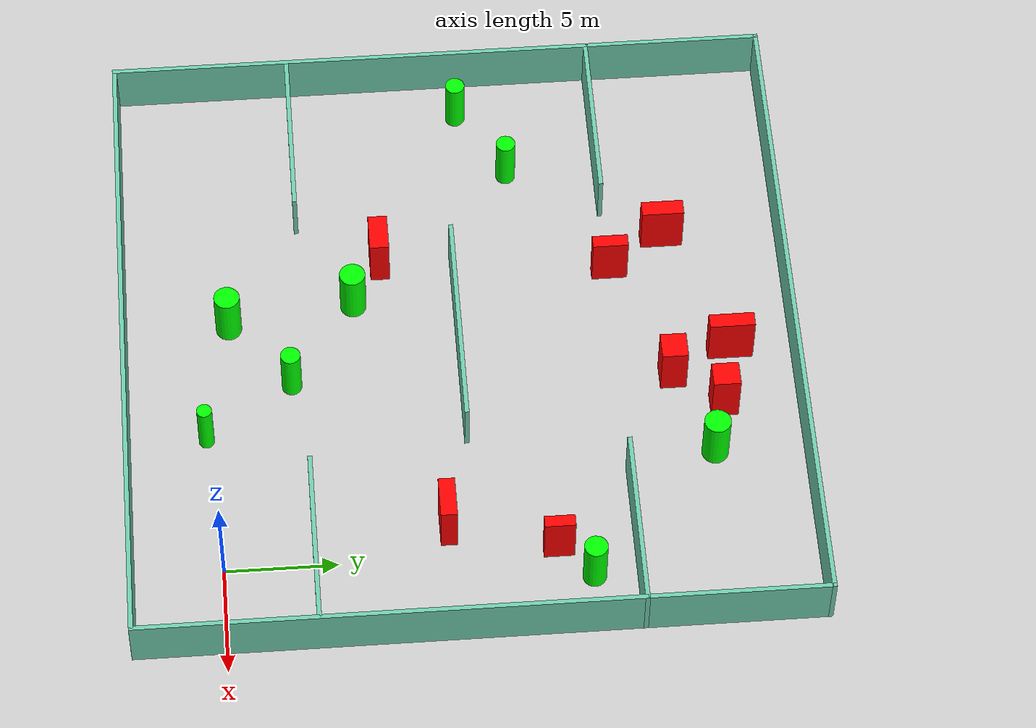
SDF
<sdf version="1.7">
 <world name="default">
  <light name="sun" type="directional">
   <pose>0 0 10 0 -0 0</pose>
   <diffuse>0.8 0.8 0.8 1</diffuse>
   <specular>0.2 0.2 0.2 1</specular>
   <attenuation>
    <range>1000</range>
    <constant>0.9</constant>
    <linear>0.01</linear>
    <quadratic>0.001</quadratic>
   </attenuation>
   <direction>-0.5 0.1 -0.9</direction>
   <spot><inner_angle>0</inner_angle><outer_angle>0</outer_angle><falloff>0</falloff></spot>
  </light>
  <model name="ground_plane">
   <static>1</static>
   <link name="link">
    <collision name="collision">
     <geometry><plane><normal>0 0 1</normal><size>100 100</size></plane></geometry>
     <surface>
      <contact><collide_bitmask>65535</collide_bitmask></contact>
      <friction><ode><mu>100</mu><mu2>50</mu2></ode></friction>
     </surface>
    </collision>
    <visual name="visual">
     <cast_shadows>0</cast_shadows>
     <geometry><plane><normal>0 0 1</normal><size>100 100</size></plane></geometry>
     <material>
      <script><uri>file://media/materials/scripts/gazebo.material</uri><name>Gazebo/Grey</name></script>
     </material>
    </visual>
   </link>
  </model>
  <gravity>0 0 -9.8</gravity>
  <magnetic_field>6e-06 2.3e-05 -4.2e-05</magnetic_field>
  <atmosphere type="adiabatic"/>
  <physics type="ode">
   <max_step_size>0.001</max_step_size>
   <real_time_factor>1</real_time_factor>
   <real_time_update_rate>1000</real_time_update_rate>
  </physics>
  <scene><ambient>0.4 0.4 0.4 1</ambient><background>0.7 0.7 0.7 1</background><shadows>1</shadows></scene>
  <spherical_coordinates>
   <surface_model>EARTH_WGS84</surface_model>
   <latitude_deg>0</latitude_deg>
   <longitude_deg>0</longitude_deg>
   <elevation>0</elevation>
   <heading_deg>0</heading_deg>
  </spherical_coordinates>
  <model name="my_base_walls">
   <link name="Wall_10">
    <collision name="Wall_10_Collision">
     <geometry><box><size>8.2 0.2 2.5</size></box></geometry>
     <pose>0 0 1.25 0 -0 0</pose>
    </collision>
    <visual name="Wall_10_Visual">
     <pose>0 0 1.25 0 -0 0</pose>
     <geometry><box><size>8.2 0.2 2.5</size></box></geometry>
     <material>
      <script><uri>file://media/materials/scripts/gazebo.material</uri><name>Gazebo/Grey</name></script>
      <ambient>0.435294 0.796078 0.67451 1</ambient>
     </material>
     <meta><layer>0</layer></meta>
    </visual>
    <pose>-11 -7 0 0 -0 0</pose>
   </link>
   <link name="Wall_12">
    <collision name="Wall_12_Collision">
     <geometry><box><size>8.2 0.2 2.5</size></box></geometry>
     <pose>0 0 1.25 0 -0 0</pose>
    </collision>
    <visual name="Wall_12_Visual">
     <pose>0 0 1.25 0 -0 0</pose>
     <geometry><box><size>8.2 0.2 2.5</size></box></geometry>
     <material>
      <script><uri>file://media/materials/scripts/gazebo.material</uri><name>Gazebo/Grey</name></script>
      <ambient>0.435294 0.796078 0.67451 1</ambient>
     </material>
     <meta><layer>0</layer></meta>
    </visual>
    <pose>-11 7 0 0 -0 0</pose>
   </link>
   <link name="Wall_14">
    <collision name="Wall_14_Collision">
     <geometry><box><size>8.2 0.2 2.5</size></box></geometry>
     <pose>0 0 1.25 0 -0 0</pose>
    </collision>
    <visual name="Wall_14_Visual">
     <pose>0 0 1.25 0 -0 0</pose>
     <geometry><box><size>8.2 0.2 2.5</size></box></geometry>
     <material>
      <script><uri>file://media/materials/scripts/gazebo.material</uri><name>Gazebo/Grey</name></script>
      <ambient>0.435294 0.796078 0.67451 1</ambient>
     </material>
     <meta><layer>0</layer></meta>
    </visual>
    <pose>11 7 0 0 -0 3.14159</pose>
   </link>
   <link name="Wall_16">
    <collision name="Wall_16_Collision">
     <geometry><box><size>10.2 0.2 2.5</size></box></geometry>
     <pose>0 0 1.25 0 -0 0</pose>
    </collision>
    <visual name="Wall_16_Visual">
     <pose>0 0 1.25 0 -0 0</pose>
     <geometry><box><size>10.2 0.2 2.5</size></box></geometry>
     <material>
      <script><uri>file://media/materials/scripts/gazebo.material</uri><name>Gazebo/Grey</name></script>
      <ambient>0.435294 0.796078 0.67451 1</ambient>
     </material>
     <meta><layer>0</layer></meta>
    </visual>
    <pose>0 0 0 0 -0 3.14159</pose>
   </link>
   <link name="Wall_2">
    <collision name="Wall_2_Collision">
     <geometry><box><size>30.2 0.2 2.5</size></box></geometry>
     <pose>0 0 1.25 0 -0 0</pose>
    </collision>
    <visual name="Wall_2_Visual">
     <pose>0 0 1.25 0 -0 0</pose>
     <geometry><box><size>30.2 0.2 2.5</size></box></geometry>
     <material>
      <script><uri>file://media/materials/scripts/gazebo.material</uri><name>Gazebo/Grey</name></script>
      <ambient>0.435294 0.796078 0.67451 1</ambient>
     </material>
     <meta><layer>0</layer></meta>
    </visual>
    <pose>0 -15 0 0 -0 3.14159</pose>
   </link>
   <link name="Wall_3">
    <collision name="Wall_3_Collision">
     <geometry><box><size>30.2 0.2 2.5</size></box></geometry>
     <pose>0 0 1.25 0 -0 0</pose>
    </collision>
    <visual name="Wall_3_Visual">
     <pose>0 0 1.25 0 -0 0</pose>
     <geometry><box><size>30.2 0.2 2.5</size></box></geometry>
     <material>
      <script><uri>file://media/materials/scripts/gazebo.material</uri><name>Gazebo/Grey</name></script>
      <ambient>0.435294 0.796078 0.67451 1</ambient>
     </material>
     <meta><layer>0</layer></meta>
    </visual>
    <pose>-15 0 0 0 -0 1.5708</pose>
   </link>
   <link name="Wall_4">
    <collision name="Wall_4_Collision">
     <geometry><box><size>30.2 0.2 2.5</size></box></geometry>
     <pose>0 0 1.25 0 -0 0</pose>
    </collision>
    <visual name="Wall_4_Visual">
     <pose>0 0 1.25 0 -0 0</pose>
     <geometry><box><size>30.2 0.2 2.5</size></box></geometry>
     <material>
      <script><uri>file://media/materials/scripts/gazebo.material</uri><name>Gazebo/Grey</name></script>
      <ambient>0.435294 0.796078 0.67451 1</ambient>
     </material>
     <meta><layer>0</layer></meta>
    </visual>
    <pose>0 15 0 0 -0 0</pose>
   </link>
   <link name="Wall_6">
    <collision name="Wall_6_Collision">
     <geometry><box><size>30.2 0.2 2.5</size></box></geometry>
     <pose>0 0 1.25 0 -0 0</pose>
    </collision>
    <visual name="Wall_6_Visual">
     <pose>0 0 1.25 0 -0 0</pose>
     <geometry><box><size>30.2 0.2 2.5</size></box></geometry>
     <material>
      <script><uri>file://media/materials/scripts/gazebo.material</uri><name>Gazebo/Grey</name></script>
      <ambient>0.435294 0.796078 0.67451 1</ambient>
     </material>
     <meta><layer>0</layer></meta>
    </visual>
    <pose>15 0 0 0 -0 1.5708</pose>
   </link>
   <link name="Wall_8">
    <collision name="Wall_8_Collision">
     <geometry><box><size>8.2 0.2 2.5</size></box></geometry>
     <pose>0 0 1.25 0 -0 0</pose>
    </collision>
    <visual name="Wall_8_Visual">
     <pose>0 0 1.25 0 -0 0</pose>
     <geometry><box><size>8.2 0.2 2.5</size></box></geometry>
     <material>
      <script><uri>file://media/materials/scripts/gazebo.material</uri><name>Gazebo/Grey</name></script>
      <ambient>0.435294 0.796078 0.67451 1</ambient>
     </material>
     <meta><layer>0</layer></meta>
    </visual>
    <pose>11 -7 0 0 -0 3.14159</pose>
   </link>
   <static>1</static>
   <pose>-11 11 0 0 -0 0</pose>
  </model>
  <model name="cylinder1">
   <static>1</static>
   <link name="link">
    <inertial>
     <mass>1</mass>
     <inertia><ixx>0.5</ixx><ixy>0</ixy><ixz>0</ixz><iyy>0.5</iyy><iyz>0</iyz><izz>1</izz></inertia>
    </inertial>
    <collision name="collision">
     <geometry><cylinder><radius>0.5832993530440098</radius><length>2.5</length></cylinder></geometry>
    </collision>
    <visual name="visual">
     <geometry><cylinder><radius>0.5832993530440098</radius><length>2.5</length></cylinder></geometry>
     <material>
      <ambient>0 1 0 1</ambient>
      <diffuse>0 1 0 1</diffuse>
      <specular>0.1 0.1 0.1 1</specular>
      <emissive>0 0 0 0</emissive>
     </material>
    </visual>
   </link>
   <pose>-13.64223162528172 6.391942692424802 1.25 0 0 0</pose>
  </model>
  <model name="cylinder2">
   <static>1</static>
   <link name="link">
    <inertial>
     <mass>1</mass>
     <inertia><ixx>0.5</ixx><ixy>0</ixy><ixz>0</ixz><iyy>0.5</iyy><iyz>0</iyz><izz>1</izz></inertia>
    </inertial>
    <collision name="collision">
     <geometry><cylinder><radius>0.44322518851225035</radius><length>2.5</length></cylinder></geometry>
    </collision>
    <visual name="visual">
     <geometry><cylinder><radius>0.44322518851225035</radius><length>2.5</length></cylinder></geometry>
     <material>
      <ambient>0 1 0 1</ambient>
      <diffuse>0 1 0 1</diffuse>
      <specular>0.1 0.1 0.1 1</specular>
      <emissive>0 0 0 0</emissive>
     </material>
    </visual>
   </link>
   <pose>-9.457978294094339 3.409522423859185 1.25 0 0 0</pose>
  </model>
  <model name="cylinder3">
   <static>1</static>
   <link name="link">
    <inertial>
     <mass>1</mass>
     <inertia><ixx>0.5</ixx><ixy>0</ixy><ixz>0</ixz><iyy>0.5</iyy><iyz>0</iyz><izz>1</izz></inertia>
    </inertial>
    <collision name="collision">
     <geometry><cylinder><radius>0.5937829469590065</radius><length>2.5</length></cylinder></geometry>
    </collision>
    <visual name="visual">
     <geometry><cylinder><radius>0.5937829469590065</radius><length>2.5</length></cylinder></geometry>
     <material>
      <ambient>0 1 0 1</ambient>
      <diffuse>0 1 0 1</diffuse>
      <specular>0.1 0.1 0.1 1</specular>
      <emissive>0 0 0 0</emissive>
     </material>
    </visual>
   </link>
   <pose>-4.6429762061211015 21.935531089043597 1.25 0 0 0</pose>
  </model>
  <model name="cylinder4">
   <static>1</static>
   <link name="link">
    <inertial>
     <mass>1</mass>
     <inertia><ixx>0.5</ixx><ixy>0</ixy><ixz>0</ixz><iyy>0.5</iyy><iyz>0</iyz><izz>1</izz></inertia>
    </inertial>
    <collision name="collision">
     <geometry><cylinder><radius>0.33897741379423285</radius><length>2.5</length></cylinder></geometry>
    </collision>
    <visual name="visual">
     <geometry><cylinder><radius>0.33897741379423285</radius><length>2.5</length></cylinder></geometry>
     <material>
      <ambient>0 1 0 1</ambient>
      <diffuse>0 1 0 1</diffuse>
      <specular>0.1 0.1 0.1 1</specular>
      <emissive>0 0 0 0</emissive>
     </material>
    </visual>
   </link>
   <pose>-6.791925823052653 -0.5025584546632609 1.25 0 0 0</pose>
  </model>
  <model name="cylinder5">
   <static>1</static>
   <link name="link">
    <inertial>
     <mass>1</mass>
     <inertia><ixx>0.5</ixx><ixy>0</ixy><ixz>0</ixz><iyy>0.5</iyy><iyz>0</iyz><izz>1</izz></inertia>
    </inertial>
    <collision name="collision">
     <geometry><cylinder><radius>0.44017729996959415</radius><length>2.5</length></cylinder></geometry>
    </collision>
    <visual name="visual">
     <geometry><cylinder><radius>0.44017729996959415</radius><length>2.5</length></cylinder></geometry>
     <material>
      <ambient>0 1 0 1</ambient>
      <diffuse>0 1 0 1</diffuse>
      <specular>0.1 0.1 0.1 1</specular>
      <emissive>0 0 0 0</emissive>
     </material>
    </visual>
   </link>
   <pose>-20.507837062126484 13.842553483893202 1.25 0 0 0</pose>
  </model>
  <model name="cylinder6">
   <static>1</static>
   <link name="link">
    <inertial>
     <mass>1</mass>
     <inertia><ixx>0.5</ixx><ixy>0</ixy><ixz>0</ixz><iyy>0.5</iyy><iyz>0</iyz><izz>1</izz></inertia>
    </inertial>
    <collision name="collision">
     <geometry><cylinder><radius>0.5188653970114998</radius><length>2.5</length></cylinder></geometry>
    </collision>
    <visual name="visual">
     <geometry><cylinder><radius>0.5188653970114998</radius><length>2.5</length></cylinder></geometry>
     <material>
      <ambient>0 1 0 1</ambient>
      <diffuse>0 1 0 1</diffuse>
      <specular>0.1 0.1 0.1 1</specular>
      <emissive>0 0 0 0</emissive>
     </material>
    </visual>
   </link>
   <pose>1.3643259295379657 16.03687147231446 1.25 0 0 0</pose>
  </model>
  <model name="cylinder7">
   <static>1</static>
   <link name="link">
    <inertial>
     <mass>1</mass>
     <inertia><ixx>0.5</ixx><ixy>0</ixy><ixz>0</ixz><iyy>0.5</iyy><iyz>0</iyz><izz>1</izz></inertia>
    </inertial>
    <collision name="collision">
     <geometry><cylinder><radius>0.5802226515670985</radius><length>2.5</length></cylinder></geometry>
    </collision>
    <visual name="visual">
     <geometry><cylinder><radius>0.5802226515670985</radius><length>2.5</length></cylinder></geometry>
     <material>
      <ambient>0 1 0 1</ambient>
      <diffuse>0 1 0 1</diffuse>
      <specular>0.1 0.1 0.1 1</specular>
      <emissive>0 0 0 0</emissive>
     </material>
    </visual>
   </link>
   <pose>-12.776035110721114 0.7101585536274402 1.25 0 0 0</pose>
  </model>
  <model name="cylinder8">
   <static>1</static>
   <link name="link">
    <inertial>
     <mass>1</mass>
     <inertia><ixx>0.5</ixx><ixy>0</ixy><ixz>0</ixz><iyy>0.5</iyy><iyz>0</iyz><izz>1</izz></inertia>
    </inertial>
    <collision name="collision">
     <geometry><cylinder><radius>0.4402240533412131</radius><length>2.5</length></cylinder></geometry>
    </collision>
    <visual name="visual">
     <geometry><cylinder><radius>0.4402240533412131</radius><length>2.5</length></cylinder></geometry>
     <material>
      <ambient>0 1 0 1</ambient>
      <diffuse>0 1 0 1</diffuse>
      <specular>0.1 0.1 0.1 1</specular>
      <emissive>0 0 0 0</emissive>
     </material>
    </visual>
   </link>
   <pose>-24.031979013655633 11.750050720022925 1.25 0 0 0</pose>
  </model>
  <model name="box1">
   <static>1</static>
   <link name="link">
    <inertial>
     <mass>1</mass>
     <inertia><ixx>0.083</ixx><ixy>0</ixy><ixz>0</ixz><iyy>0.083</iyy><iyz>0</iyz><izz>0.083</izz></inertia>
    </inertial>
    <collision name="collision">
     <geometry><box><size>1.1243229015928686 1.216174076474224 2.5</size></box></geometry>
    </collision>
    <visual name="visual">
     <geometry><box><size>1.1243229015928686 1.216174076474224 2.5</size></box></geometry>
     <material>
      <ambient>1 0 0 1</ambient>
      <diffuse>1 0 0 1</diffuse>
      <specular>0.1 0.1 0.1 1</specular>
      <emissive>0 0 0 0</emissive>
     </material>
    </visual>
    <sensor name="my_contact" type="contact">
     <contact><collision>box_collision</collision><topic>__default_topic__</topic></contact>
    </sensor>
   </link>
   <pose>-7.115792655337515 22.57493306640683 1.25 0 0 0</pose>
  </model>
  <model name="box2">
   <static>1</static>
   <link name="link">
    <inertial>
     <mass>1</mass>
     <inertia><ixx>0.083</ixx><ixy>0</ixy><ixz>0</ixz><iyy>0.083</iyy><iyz>0</iyz><izz>0.083</izz></inertia>
    </inertial>
    <collision name="collision">
     <geometry><box><size>0.593730039937436 1.6031519396508265 2.5</size></box></geometry>
    </collision>
    <visual name="visual">
     <geometry><box><size>0.593730039937436 1.6031519396508265 2.5</size></box></geometry>
     <material>
      <ambient>1 0 0 1</ambient>
      <diffuse>1 0 0 1</diffuse>
      <specular>0.1 0.1 0.1 1</specular>
      <emissive>0 0 0 0</emissive>
     </material>
    </visual>
    <sensor name="my_contact" type="contact">
     <contact><collision>box_collision</collision><topic>__default_topic__</topic></contact>
    </sensor>
   </link>
   <pose>-14.679478860202632 18.13353254938417 1.25 0 0 0</pose>
  </model>
  <model name="box3">
   <static>1</static>
   <link name="link">
    <inertial>
     <mass>1</mass>
     <inertia><ixx>0.083</ixx><ixy>0</ixy><ixz>0</ixz><iyy>0.083</iyy><iyz>0</iyz><izz>0.083</izz></inertia>
    </inertial>
    <collision name="collision">
     <geometry><box><size>1.2052886828634914 1.163681525076681 2.5</size></box></geometry>
    </collision>
    <visual name="visual">
     <geometry><box><size>1.2052886828634914 1.163681525076681 2.5</size></box></geometry>
     <material>
      <ambient>1 0 0 1</ambient>
      <diffuse>1 0 0 1</diffuse>
      <specular>0.1 0.1 0.1 1</specular>
      <emissive>0 0 0 0</emissive>
     </material>
    </visual>
    <sensor name="my_contact" type="contact">
     <contact><collision>box_collision</collision><topic>__default_topic__</topic></contact>
    </sensor>
   </link>
   <pose>-8.798419014692534 20.437363688234083 1.25 0 0 0</pose>
  </model>
  <model name="box4">
   <static>1</static>
   <link name="link">
    <inertial>
     <mass>1</mass>
     <inertia><ixx>0.083</ixx><ixy>0</ixy><ixz>0</ixz><iyy>0.083</iyy><iyz>0</iyz><izz>0.083</izz></inertia>
    </inertial>
    <collision name="collision">
     <geometry><box><size>0.6742312225456841 2.033036411369494 2.5</size></box></geometry>
    </collision>
    <visual name="visual">
     <geometry><box><size>0.6742312225456841 2.033036411369494 2.5</size></box></geometry>
     <material>
      <ambient>1 0 0 1</ambient>
      <diffuse>1 0 0 1</diffuse>
      <specular>0.1 0.1 0.1 1</specular>
      <emissive>0 0 0 0</emissive>
     </material>
    </visual>
    <sensor name="my_contact" type="contact">
     <contact><collision>box_collision</collision><topic>__default_topic__</topic></contact>
    </sensor>
   </link>
   <pose>-9.966135433485872 23.148754708398883 1.25 0 0 0</pose>
  </model>
  <model name="box5">
   <static>1</static>
   <link name="link">
    <inertial>
     <mass>1</mass>
     <inertia><ixx>0.083</ixx><ixy>0</ixy><ixz>0</ixz><iyy>0.083</iyy><iyz>0</iyz><izz>0.083</izz></inertia>
    </inertial>
    <collision name="collision">
     <geometry><box><size>1.744705704169834 0.8683997547714186 2.5</size></box></geometry>
    </collision>
    <visual name="visual">
     <geometry><box><size>1.744705704169834 0.8683997547714186 2.5</size></box></geometry>
     <material>
      <ambient>1 0 0 1</ambient>
      <diffuse>1 0 0 1</diffuse>
      <specular>0.1 0.1 0.1 1</specular>
      <emissive>0 0 0 0</emissive>
     </material>
    </visual>
    <sensor name="my_contact" type="contact">
     <contact><collision>box_collision</collision><topic>__default_topic__</topic></contact>
    </sensor>
   </link>
   <pose>-15.918333130379839 7.702502112065208 1.25 0 0 0</pose>
  </model>
  <model name="box6">
   <static>1</static>
   <link name="link">
    <inertial>
     <mass>1</mass>
     <inertia><ixx>0.083</ixx><ixy>0</ixy><ixz>0</ixz><iyy>0.083</iyy><iyz>0</iyz><izz>0.083</izz></inertia>
    </inertial>
    <collision name="collision">
     <geometry><box><size>0.7260986246847146 1.8987918551493195 2.5</size></box></geometry>
    </collision>
    <visual name="visual">
     <geometry><box><size>0.7260986246847146 1.8987918551493195 2.5</size></box></geometry>
     <material>
      <ambient>1 0 0 1</ambient>
      <diffuse>1 0 0 1</diffuse>
      <specular>0.1 0.1 0.1 1</specular>
      <emissive>0 0 0 0</emissive>
     </material>
    </visual>
    <sensor name="my_contact" type="contact">
     <contact><collision>box_collision</collision><topic>__default_topic__</topic></contact>
    </sensor>
   </link>
   <pose>-16.355677348303317 20.670317475355493 1.25 0 0 0</pose>
  </model>
  <model name="box7">
   <static>1</static>
   <link name="link">
    <inertial>
     <mass>1</mass>
     <inertia><ixx>0.083</ixx><ixy>0</ixy><ixz>0</ixz><iyy>0.083</iyy><iyz>0</iyz><izz>0.083</izz></inertia>
    </inertial>
    <collision name="collision">
     <geometry><box><size>0.5352190788061421 1.3492823048576132 2.5</size></box></geometry>
    </collision>
    <visual name="visual">
     <geometry><box><size>0.5352190788061421 1.3492823048576132 2.5</size></box></geometry>
     <material>
      <ambient>1 0 0 1</ambient>
      <diffuse>1 0 0 1</diffuse>
      <specular>0.1 0.1 0.1 1</specular>
      <emissive>0 0 0 0</emissive>
     </material>
    </visual>
    <sensor name="my_contact" type="contact">
     <contact><collision>box_collision</collision><topic>__default_topic__</topic></contact>
    </sensor>
   </link>
   <pose>-0.027134654799443325 14.595306266316904 1.25 0 0 0</pose>
  </model>
  <model name="box8">
   <static>1</static>
   <link name="link">
    <inertial>
     <mass>1</mass>
     <inertia><ixx>0.083</ixx><ixy>0</ixy><ixz>0</ixz><iyy>0.083</iyy><iyz>0</iyz><izz>0.083</izz></inertia>
    </inertial>
    <collision name="collision">
     <geometry><box><size>1.8679095252548483 0.7318855738836085 2.5</size></box></geometry>
    </collision>
    <visual name="visual">
     <geometry><box><size>1.8679095252548483 0.7318855738836085 2.5</size></box></geometry>
     <material>
      <ambient>1 0 0 1</ambient>
      <diffuse>1 0 0 1</diffuse>
      <specular>0.1 0.1 0.1 1</specular>
      <emissive>0 0 0 0</emissive>
     </material>
    </visual>
    <sensor name="my_contact" type="contact">
     <contact><collision>box_collision</collision><topic>__default_topic__</topic></contact>
    </sensor>
   </link>
   <pose>-1.6012228819961685 9.85328109962567 1.25 0 0 0</pose>
  </model>
 </world>
</sdf>
